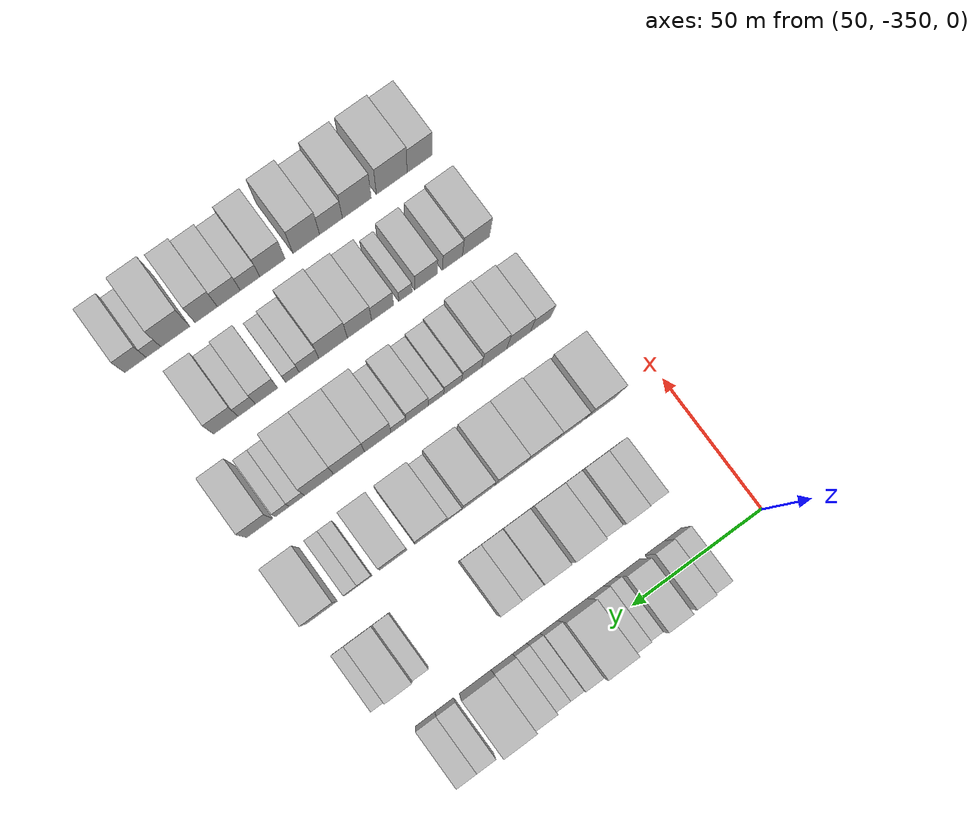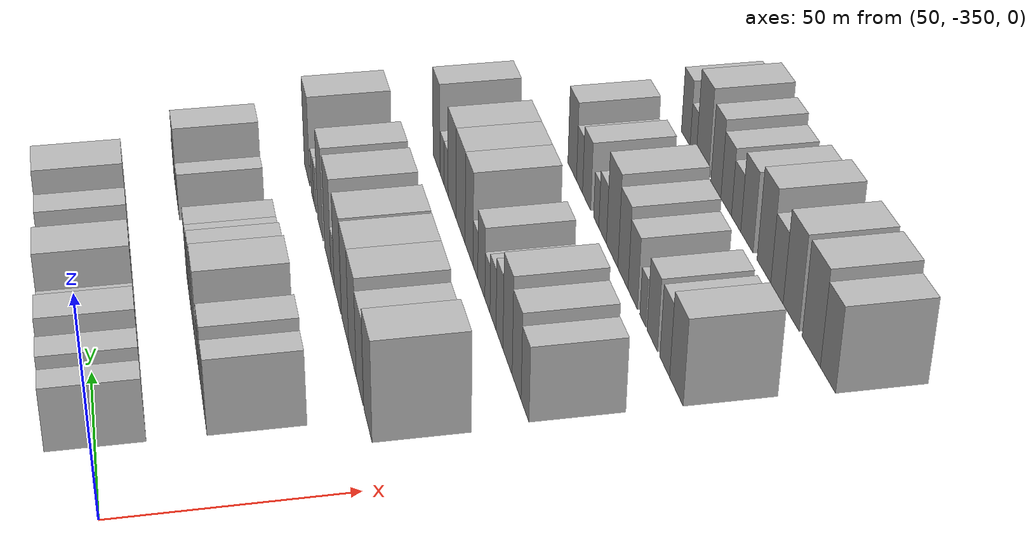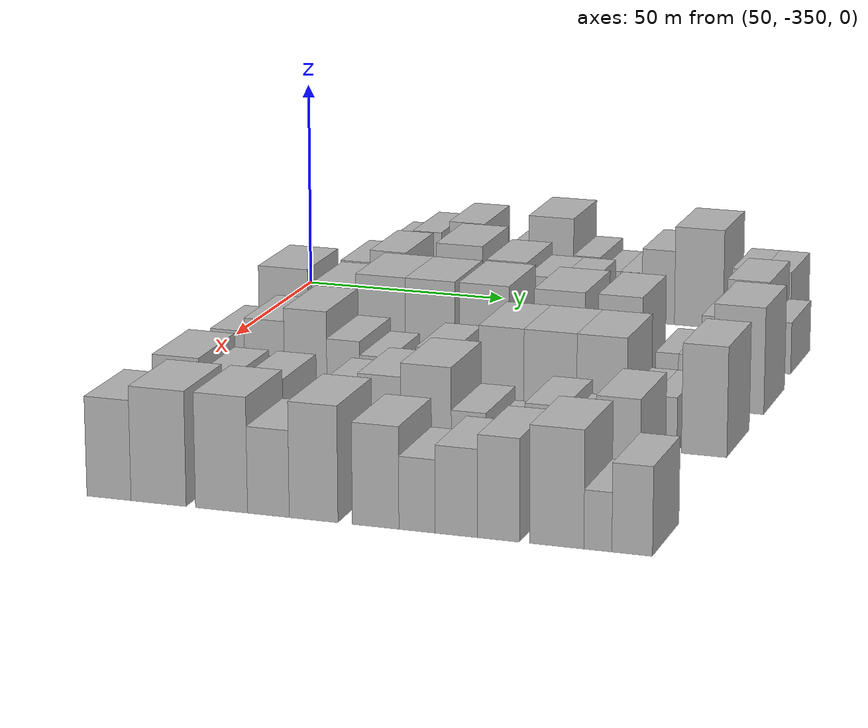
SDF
<sdf version="1.6">
 <world name="default">
  <model name="building_26">
   <static>1</static>
   <pose>50.0000 -323.1114 0 0.000000 0.000000 0.000000</pose>
   <link name="link">
    <pose>0 0 7.50 0 0 0</pose>
    <collision name="collision"><geometry><box><size>20.0000 6.7260 15.0000</size></box></geometry></collision>
    <visual name="visual">
     <cast_shadows>0</cast_shadows>
     <geometry><box><size>20.0000 6.7260 15.0000</size></box></geometry>
     <material>
      <script>
       <uri>model://HANNAS_wall/materials/scripts</uri>
       <uri>model://HANNAS_wall/materials/textures</uri>
       <name>vrc/HANNAS_wall</name>
      </script>
     </material>
    </visual>
   </link>
  </model>
  <model name="building_27">
   <static>1</static>
   <pose>50.0000 -316.0985 0 0.000000 0.000000 0.000000</pose>
   <link name="link">
    <pose>0 0 9.00 0 0 0</pose>
    <collision name="collision"><geometry><box><size>20.0000 7.2999 18.0000</size></box></geometry></collision>
    <visual name="visual">
     <cast_shadows>0</cast_shadows>
     <geometry><box><size>20.0000 7.2999 18.0000</size></box></geometry>
     <material>
      <script>
       <uri>model://HANNAS_wall/materials/scripts</uri>
       <uri>model://HANNAS_wall/materials/textures</uri>
       <name>vrc/HANNAS_wall</name>
      </script>
     </material>
    </visual>
   </link>
  </model>
  <model name="building_28">
   <static>1</static>
   <pose>50.0000 -305.9379 0 0.000000 0.000000 0.000000</pose>
   <link name="link">
    <pose>0 0 10.50 0 0 0</pose>
    <collision name="collision"><geometry><box><size>20.0000 9.0212 21.0000</size></box></geometry></collision>
    <visual name="visual">
     <cast_shadows>0</cast_shadows>
     <geometry><box><size>20.0000 9.0212 21.0000</size></box></geometry>
     <material>
      <script>
       <uri>model://HANNAS_wall/materials/scripts</uri>
       <uri>model://HANNAS_wall/materials/textures</uri>
       <name>vrc/HANNAS_wall</name>
      </script>
     </material>
    </visual>
   </link>
  </model>
  <model name="building_29">
   <static>1</static>
   <pose>50.0000 -299.0022 0 0.000000 0.000000 0.000000</pose>
   <link name="link">
    <pose>0 0 6.00 0 0 0</pose>
    <collision name="collision"><geometry><box><size>20.0000 4.8502 12.0000</size></box></geometry></collision>
    <visual name="visual">
     <cast_shadows>0</cast_shadows>
     <geometry><box><size>20.0000 4.8502 12.0000</size></box></geometry>
     <material>
      <script>
       <uri>model://HANNAS_wall/materials/scripts</uri>
       <uri>model://HANNAS_wall/materials/textures</uri>
       <name>vrc/HANNAS_wall</name>
      </script>
     </material>
    </visual>
   </link>
  </model>
  <model name="building_30">
   <static>1</static>
   <pose>50.0000 -293.4492 0 0.000000 0.000000 0.000000</pose>
   <link name="link">
    <pose>0 0 7.50 0 0 0</pose>
    <collision name="collision"><geometry><box><size>20.0000 6.2558 15.0000</size></box></geometry></collision>
    <visual name="visual">
     <cast_shadows>0</cast_shadows>
     <geometry><box><size>20.0000 6.2558 15.0000</size></box></geometry>
     <material>
      <script>
       <uri>model://HANNAS_wall/materials/scripts</uri>
       <uri>model://HANNAS_wall/materials/textures</uri>
       <name>vrc/HANNAS_wall</name>
      </script>
     </material>
    </visual>
   </link>
  </model>
  <model name="building_31">
   <static>1</static>
   <pose>50.0000 -284.7208 0 0.000000 0.000000 0.000000</pose>
   <link name="link">
    <pose>0 0 12.00 0 0 0</pose>
    <collision name="collision"><geometry><box><size>20.0000 11.2011 24.0000</size></box></geometry></collision>
    <visual name="visual">
     <cast_shadows>0</cast_shadows>
     <geometry><box><size>20.0000 11.2011 24.0000</size></box></geometry>
     <material>
      <script>
       <uri>model://HANNAS_wall/materials/scripts</uri>
       <uri>model://HANNAS_wall/materials/textures</uri>
       <name>vrc/HANNAS_wall</name>
      </script>
     </material>
    </visual>
   </link>
  </model>
  <model name="building_32">
   <static>1</static>
   <pose>50.0000 -275.7651 0 0.000000 0.000000 0.000000</pose>
   <link name="link">
    <pose>0 0 7.50 0 0 0</pose>
    <collision name="collision"><geometry><box><size>20.0000 6.7103 15.0000</size></box></geometry></collision>
    <visual name="visual">
     <cast_shadows>0</cast_shadows>
     <geometry><box><size>20.0000 6.7103 15.0000</size></box></geometry>
     <material>
      <script>
       <uri>model://HANNAS_wall/materials/scripts</uri>
       <uri>model://HANNAS_wall/materials/textures</uri>
       <name>vrc/HANNAS_wall</name>
      </script>
     </material>
    </visual>
   </link>
  </model>
  <model name="building_33">
   <static>1</static>
   <pose>50.0000 -269.9384 0 0.000000 0.000000 0.000000</pose>
   <link name="link">
    <pose>0 0 6.00 0 0 0</pose>
    <collision name="collision"><geometry><box><size>20.0000 4.9430 12.0000</size></box></geometry></collision>
    <visual name="visual">
     <cast_shadows>0</cast_shadows>
     <geometry><box><size>20.0000 4.9430 12.0000</size></box></geometry>
     <material>
      <script>
       <uri>model://HANNAS_wall/materials/scripts</uri>
       <uri>model://HANNAS_wall/materials/textures</uri>
       <name>vrc/HANNAS_wall</name>
      </script>
     </material>
    </visual>
   </link>
  </model>
  <model name="building_34">
   <static>1</static>
   <pose>50.0000 -264.7541 0 0.000000 0.000000 0.000000</pose>
   <link name="link">
    <pose>0 0 6.00 0 0 0</pose>
    <collision name="collision"><geometry><box><size>20.0000 5.4256 12.0000</size></box></geometry></collision>
    <visual name="visual">
     <cast_shadows>0</cast_shadows>
     <geometry><box><size>20.0000 5.4256 12.0000</size></box></geometry>
     <material>
      <script>
       <uri>model://HANNAS_wall/materials/scripts</uri>
       <uri>model://HANNAS_wall/materials/textures</uri>
       <name>vrc/HANNAS_wall</name>
      </script>
     </material>
    </visual>
   </link>
  </model>
  <model name="building_35">
   <static>1</static>
   <pose>50.0000 -258.0373 0 0.000000 0.000000 0.000000</pose>
   <link name="link">
    <pose>0 0 9.00 0 0 0</pose>
    <collision name="collision"><geometry><box><size>20.0000 8.0079 18.0000</size></box></geometry></collision>
    <visual name="visual">
     <cast_shadows>0</cast_shadows>
     <geometry><box><size>20.0000 8.0079 18.0000</size></box></geometry>
     <material>
      <script>
       <uri>model://HANNAS_wall/materials/scripts</uri>
       <uri>model://HANNAS_wall/materials/textures</uri>
       <name>vrc/HANNAS_wall</name>
      </script>
     </material>
    </visual>
   </link>
  </model>
  <model name="building_36">
   <static>1</static>
   <pose>50.0000 -248.0703 0 0.000000 0.000000 0.000000</pose>
   <link name="link">
    <pose>0 0 12.00 0 0 0</pose>
    <collision name="collision"><geometry><box><size>20.0000 11.9261 24.0000</size></box></geometry></collision>
    <visual name="visual">
     <cast_shadows>0</cast_shadows>
     <geometry><box><size>20.0000 11.9261 24.0000</size></box></geometry>
     <material>
      <script>
       <uri>model://HANNAS_wall/materials/scripts</uri>
       <uri>model://HANNAS_wall/materials/textures</uri>
       <name>vrc/HANNAS_wall</name>
      </script>
     </material>
    </visual>
   </link>
  </model>
  <model name="building_37">
   <static>1</static>
   <pose>50.0000 -236.6363 0 0.000000 0.000000 0.000000</pose>
   <link name="link">
    <pose>0 0 7.50 0 0 0</pose>
    <collision name="collision"><geometry><box><size>20.0000 6.9419 15.0000</size></box></geometry></collision>
    <visual name="visual">
     <cast_shadows>0</cast_shadows>
     <geometry><box><size>20.0000 6.9419 15.0000</size></box></geometry>
     <material>
      <script>
       <uri>model://HANNAS_wall/materials/scripts</uri>
       <uri>model://HANNAS_wall/materials/textures</uri>
       <name>vrc/HANNAS_wall</name>
      </script>
     </material>
    </visual>
   </link>
  </model>
  <model name="building_38">
   <static>1</static>
   <pose>50.0000 -229.5078 0 0.000000 0.000000 0.000000</pose>
   <link name="link">
    <pose>0 0 7.50 0 0 0</pose>
    <collision name="collision"><geometry><box><size>20.0000 7.3150 15.0000</size></box></geometry></collision>
    <visual name="visual">
     <cast_shadows>0</cast_shadows>
     <geometry><box><size>20.0000 7.3150 15.0000</size></box></geometry>
     <material>
      <script>
       <uri>model://HANNAS_wall/materials/scripts</uri>
       <uri>model://HANNAS_wall/materials/textures</uri>
       <name>vrc/HANNAS_wall</name>
      </script>
     </material>
    </visual>
   </link>
  </model>
  <model name="building_153">
   <static>1</static>
   <pose>82.0000 -322.9531 0 0.000000 0.000000 0.000000</pose>
   <link name="link">
    <pose>0 0 9.00 0 0 0</pose>
    <collision name="collision"><geometry><box><size>20.0000 7.2082 18.0000</size></box></geometry></collision>
    <visual name="visual">
     <cast_shadows>0</cast_shadows>
     <geometry><box><size>20.0000 7.2082 18.0000</size></box></geometry>
     <material>
      <script>
       <uri>model://HANNAS_wall/materials/scripts</uri>
       <uri>model://HANNAS_wall/materials/textures</uri>
       <name>vrc/HANNAS_wall</name>
      </script>
     </material>
    </visual>
   </link>
  </model>
  <model name="building_154">
   <static>1</static>
   <pose>82.0000 -314.8968 0 0.000000 0.000000 0.000000</pose>
   <link name="link">
    <pose>0 0 10.50 0 0 0</pose>
    <collision name="collision"><geometry><box><size>20.0000 8.9045 21.0000</size></box></geometry></collision>
    <visual name="visual">
     <cast_shadows>0</cast_shadows>
     <geometry><box><size>20.0000 8.9045 21.0000</size></box></geometry>
     <material>
      <script>
       <uri>model://HANNAS_wall/materials/scripts</uri>
       <uri>model://HANNAS_wall/materials/textures</uri>
       <name>vrc/HANNAS_wall</name>
      </script>
     </material>
    </visual>
   </link>
  </model>
  <model name="building_155">
   <static>1</static>
   <pose>82.0000 -306.7368 0 0.000000 0.000000 0.000000</pose>
   <link name="link">
    <pose>0 0 7.50 0 0 0</pose>
    <collision name="collision"><geometry><box><size>20.0000 7.4154 15.0000</size></box></geometry></collision>
    <visual name="visual">
     <cast_shadows>0</cast_shadows>
     <geometry><box><size>20.0000 7.4154 15.0000</size></box></geometry>
     <material>
      <script>
       <uri>model://HANNAS_wall/materials/scripts</uri>
       <uri>model://HANNAS_wall/materials/textures</uri>
       <name>vrc/HANNAS_wall</name>
      </script>
     </material>
    </visual>
   </link>
  </model>
  <model name="building_156">
   <static>1</static>
   <pose>82.0000 -297.3672 0 0.000000 0.000000 0.000000</pose>
   <link name="link">
    <pose>0 0 12.00 0 0 0</pose>
    <collision name="collision"><geometry><box><size>20.0000 11.3239 24.0000</size></box></geometry></collision>
    <visual name="visual">
     <cast_shadows>0</cast_shadows>
     <geometry><box><size>20.0000 11.3239 24.0000</size></box></geometry>
     <material>
      <script>
       <uri>model://HANNAS_wall/materials/scripts</uri>
       <uri>model://HANNAS_wall/materials/textures</uri>
       <name>vrc/HANNAS_wall</name>
      </script>
     </material>
    </visual>
   </link>
  </model>
  <model name="building_157">
   <static>1</static>
   <pose>82.0000 -285.8027 0 0.000000 0.000000 0.000000</pose>
   <link name="link">
    <pose>0 0 10.50 0 0 0</pose>
    <collision name="collision"><geometry><box><size>20.0000 9.8051 21.0000</size></box></geometry></collision>
    <visual name="visual">
     <cast_shadows>0</cast_shadows>
     <geometry><box><size>20.0000 9.8051 21.0000</size></box></geometry>
     <material>
      <script>
       <uri>model://HANNAS_wall/materials/scripts</uri>
       <uri>model://HANNAS_wall/materials/textures</uri>
       <name>vrc/HANNAS_wall</name>
      </script>
     </material>
    </visual>
   </link>
  </model>
  <model name="building_158">
   <static>1</static>
   <pose>82.0000 -276.9880 0 0.000000 0.000000 0.000000</pose>
   <link name="link">
    <pose>0 0 9.00 0 0 0</pose>
    <collision name="collision"><geometry><box><size>20.0000 7.8242 18.0000</size></box></geometry></collision>
    <visual name="visual">
     <cast_shadows>0</cast_shadows>
     <geometry><box><size>20.0000 7.8242 18.0000</size></box></geometry>
     <material>
      <script>
       <uri>model://HANNAS_wall/materials/scripts</uri>
       <uri>model://HANNAS_wall/materials/textures</uri>
       <name>vrc/HANNAS_wall</name>
      </script>
     </material>
    </visual>
   </link>
  </model>
  <model name="building_159">
   <static>1</static>
   <pose>82.0000 -269.1621 0 0.000000 0.000000 0.000000</pose>
   <link name="link">
    <pose>0 0 9.00 0 0 0</pose>
    <collision name="collision"><geometry><box><size>20.0000 7.8276 18.0000</size></box></geometry></collision>
    <visual name="visual">
     <cast_shadows>0</cast_shadows>
     <geometry><box><size>20.0000 7.8276 18.0000</size></box></geometry>
     <material>
      <script>
       <uri>model://HANNAS_wall/materials/scripts</uri>
       <uri>model://HANNAS_wall/materials/textures</uri>
       <name>vrc/HANNAS_wall</name>
      </script>
     </material>
    </visual>
   </link>
  </model>
  <model name="building_160">
   <static>1</static>
   <pose>82.0000 -236.4114 0 0.000000 0.000000 0.000000</pose>
   <link name="link">
    <pose>0 0 6.00 0 0 0</pose>
    <collision name="collision"><geometry><box><size>20.0000 5.8913 12.0000</size></box></geometry></collision>
    <visual name="visual">
     <cast_shadows>0</cast_shadows>
     <geometry><box><size>20.0000 5.8913 12.0000</size></box></geometry>
     <material>
      <script>
       <uri>model://HANNAS_wall/materials/scripts</uri>
       <uri>model://HANNAS_wall/materials/textures</uri>
       <name>vrc/HANNAS_wall</name>
      </script>
     </material>
    </visual>
   </link>
  </model>
  <model name="building_161">
   <static>1</static>
   <pose>82.0000 -228.5733 0 0.000000 0.000000 0.000000</pose>
   <link name="link">
    <pose>0 0 10.50 0 0 0</pose>
    <collision name="collision"><geometry><box><size>20.0000 9.7850 21.0000</size></box></geometry></collision>
    <visual name="visual">
     <cast_shadows>0</cast_shadows>
     <geometry><box><size>20.0000 9.7850 21.0000</size></box></geometry>
     <material>
      <script>
       <uri>model://HANNAS_wall/materials/scripts</uri>
       <uri>model://HANNAS_wall/materials/textures</uri>
       <name>vrc/HANNAS_wall</name>
      </script>
     </material>
    </visual>
   </link>
  </model>
  <model name="building_162">
   <static>1</static>
   <pose>82.0000 -221.0732 0 0.000000 0.000000 0.000000</pose>
   <link name="link">
    <pose>0 0 6.00 0 0 0</pose>
    <collision name="collision"><geometry><box><size>20.0000 5.2152 12.0000</size></box></geometry></collision>
    <visual name="visual">
     <cast_shadows>0</cast_shadows>
     <geometry><box><size>20.0000 5.2152 12.0000</size></box></geometry>
     <material>
      <script>
       <uri>model://HANNAS_wall/materials/scripts</uri>
       <uri>model://HANNAS_wall/materials/textures</uri>
       <name>vrc/HANNAS_wall</name>
      </script>
     </material>
    </visual>
   </link>
  </model>
  <model name="building_266">
   <static>1</static>
   <pose>114.0000 -328.7282 0 0.000000 0.000000 0.000000</pose>
   <link name="link">
    <pose>0 0 12.00 0 0 0</pose>
    <collision name="collision"><geometry><box><size>20.0000 11.8480 24.0000</size></box></geometry></collision>
    <visual name="visual">
     <cast_shadows>0</cast_shadows>
     <geometry><box><size>20.0000 11.8480 24.0000</size></box></geometry>
     <material>
      <script>
       <uri>model://HANNAS_wall/materials/scripts</uri>
       <uri>model://HANNAS_wall/materials/textures</uri>
       <name>vrc/HANNAS_wall</name>
      </script>
     </material>
    </visual>
   </link>
  </model>
  <model name="building_267">
   <static>1</static>
   <pose>114.0000 -316.5685 0 0.000000 0.000000 0.000000</pose>
   <link name="link">
    <pose>0 0 10.50 0 0 0</pose>
    <collision name="collision"><geometry><box><size>20.0000 10.4715 21.0000</size></box></geometry></collision>
    <visual name="visual">
     <cast_shadows>0</cast_shadows>
     <geometry><box><size>20.0000 10.4715 21.0000</size></box></geometry>
     <material>
      <script>
       <uri>model://HANNAS_wall/materials/scripts</uri>
       <uri>model://HANNAS_wall/materials/textures</uri>
       <name>vrc/HANNAS_wall</name>
      </script>
     </material>
    </visual>
   </link>
  </model>
  <model name="building_268">
   <static>1</static>
   <pose>114.0000 -305.4364 0 0.000000 0.000000 0.000000</pose>
   <link name="link">
    <pose>0 0 12.00 0 0 0</pose>
    <collision name="collision"><geometry><box><size>20.0000 11.7926 24.0000</size></box></geometry></collision>
    <visual name="visual">
     <cast_shadows>0</cast_shadows>
     <geometry><box><size>20.0000 11.7926 24.0000</size></box></geometry>
     <material>
      <script>
       <uri>model://HANNAS_wall/materials/scripts</uri>
       <uri>model://HANNAS_wall/materials/textures</uri>
       <name>vrc/HANNAS_wall</name>
      </script>
     </material>
    </visual>
   </link>
  </model>
  <model name="building_269">
   <static>1</static>
   <pose>114.0000 -293.7031 0 0.000000 0.000000 0.000000</pose>
   <link name="link">
    <pose>0 0 12.00 0 0 0</pose>
    <collision name="collision"><geometry><box><size>20.0000 11.6740 24.0000</size></box></geometry></collision>
    <visual name="visual">
     <cast_shadows>0</cast_shadows>
     <geometry><box><size>20.0000 11.6740 24.0000</size></box></geometry>
     <material>
      <script>
       <uri>model://HANNAS_wall/materials/scripts</uri>
       <uri>model://HANNAS_wall/materials/textures</uri>
       <name>vrc/HANNAS_wall</name>
      </script>
     </material>
    </visual>
   </link>
  </model>
  <model name="building_270">
   <static>1</static>
   <pose>114.0000 -281.0234 0 0.000000 0.000000 0.000000</pose>
   <link name="link">
    <pose>0 0 12.00 0 0 0</pose>
    <collision name="collision"><geometry><box><size>20.0000 11.6855 24.0000</size></box></geometry></collision>
    <visual name="visual">
     <cast_shadows>0</cast_shadows>
     <geometry><box><size>20.0000 11.6855 24.0000</size></box></geometry>
     <material>
      <script>
       <uri>model://HANNAS_wall/materials/scripts</uri>
       <uri>model://HANNAS_wall/materials/textures</uri>
       <name>vrc/HANNAS_wall</name>
      </script>
     </material>
    </visual>
   </link>
  </model>
  <model name="building_271">
   <static>1</static>
   <pose>114.0000 -272.3044 0 0.000000 0.000000 0.000000</pose>
   <link name="link">
    <pose>0 0 6.00 0 0 0</pose>
    <collision name="collision"><geometry><box><size>20.0000 5.7524 12.0000</size></box></geometry></collision>
    <visual name="visual">
     <cast_shadows>0</cast_shadows>
     <geometry><box><size>20.0000 5.7524 12.0000</size></box></geometry>
     <material>
      <script>
       <uri>model://HANNAS_wall/materials/scripts</uri>
       <uri>model://HANNAS_wall/materials/textures</uri>
       <name>vrc/HANNAS_wall</name>
      </script>
     </material>
    </visual>
   </link>
  </model>
  <model name="building_272">
   <static>1</static>
   <pose>114.0000 -263.5672 0 0.000000 0.000000 0.000000</pose>
   <link name="link">
    <pose>0 0 12.00 0 0 0</pose>
    <collision name="collision"><geometry><box><size>20.0000 11.7221 24.0000</size></box></geometry></collision>
    <visual name="visual">
     <cast_shadows>0</cast_shadows>
     <geometry><box><size>20.0000 11.7221 24.0000</size></box></geometry>
     <material>
      <script>
       <uri>model://HANNAS_wall/materials/scripts</uri>
       <uri>model://HANNAS_wall/materials/textures</uri>
       <name>vrc/HANNAS_wall</name>
      </script>
     </material>
    </visual>
   </link>
  </model>
  <model name="building_273">
   <static>1</static>
   <pose>114.0000 -249.6778 0 0.000000 0.000000 0.000000</pose>
   <link name="link">
    <pose>0 0 12.00 0 0 0</pose>
    <collision name="collision"><geometry><box><size>20.0000 10.0566 24.0000</size></box></geometry></collision>
    <visual name="visual">
     <cast_shadows>0</cast_shadows>
     <geometry><box><size>20.0000 10.0566 24.0000</size></box></geometry>
     <material>
      <script>
       <uri>model://HANNAS_wall/materials/scripts</uri>
       <uri>model://HANNAS_wall/materials/textures</uri>
       <name>vrc/HANNAS_wall</name>
      </script>
     </material>
    </visual>
   </link>
  </model>
  <model name="building_274">
   <static>1</static>
   <pose>114.0000 -239.0536 0 0.000000 0.000000 0.000000</pose>
   <link name="link">
    <pose>0 0 6.00 0 0 0</pose>
    <collision name="collision"><geometry><box><size>20.0000 5.1920 12.0000</size></box></geometry></collision>
    <visual name="visual">
     <cast_shadows>0</cast_shadows>
     <geometry><box><size>20.0000 5.1920 12.0000</size></box></geometry>
     <material>
      <script>
       <uri>model://HANNAS_wall/materials/scripts</uri>
       <uri>model://HANNAS_wall/materials/textures</uri>
       <name>vrc/HANNAS_wall</name>
      </script>
     </material>
    </visual>
   </link>
  </model>
  <model name="building_275">
   <static>1</static>
   <pose>114.0000 -234.0243 0 0.000000 0.000000 0.000000</pose>
   <link name="link">
    <pose>0 0 6.00 0 0 0</pose>
    <collision name="collision"><geometry><box><size>20.0000 4.8666 12.0000</size></box></geometry></collision>
    <visual name="visual">
     <cast_shadows>0</cast_shadows>
     <geometry><box><size>20.0000 4.8666 12.0000</size></box></geometry>
     <material>
      <script>
       <uri>model://HANNAS_wall/materials/scripts</uri>
       <uri>model://HANNAS_wall/materials/textures</uri>
       <name>vrc/HANNAS_wall</name>
      </script>
     </material>
    </visual>
   </link>
  </model>
  <model name="building_276">
   <static>1</static>
   <pose>114.0000 -222.8743 0 0.000000 0.000000 0.000000</pose>
   <link name="link">
    <pose>0 0 12.00 0 0 0</pose>
    <collision name="collision"><geometry><box><size>20.0000 11.4333 24.0000</size></box></geometry></collision>
    <visual name="visual">
     <cast_shadows>0</cast_shadows>
     <geometry><box><size>20.0000 11.4333 24.0000</size></box></geometry>
     <material>
      <script>
       <uri>model://HANNAS_wall/materials/scripts</uri>
       <uri>model://HANNAS_wall/materials/textures</uri>
       <name>vrc/HANNAS_wall</name>
      </script>
     </material>
    </visual>
   </link>
  </model>
  <model name="building_385">
   <static>1</static>
   <pose>146.0000 -329.3677 0 0.000000 0.000000 0.000000</pose>
   <link name="link">
    <pose>0 0 9.00 0 0 0</pose>
    <collision name="collision"><geometry><box><size>20.0000 7.8290 18.0000</size></box></geometry></collision>
    <visual name="visual">
     <cast_shadows>0</cast_shadows>
     <geometry><box><size>20.0000 7.8290 18.0000</size></box></geometry>
     <material>
      <script>
       <uri>model://HANNAS_wall/materials/scripts</uri>
       <uri>model://HANNAS_wall/materials/textures</uri>
       <name>vrc/HANNAS_wall</name>
      </script>
     </material>
    </visual>
   </link>
  </model>
  <model name="building_386">
   <static>1</static>
   <pose>146.0000 -320.8511 0 0.000000 0.000000 0.000000</pose>
   <link name="link">
    <pose>0 0 10.50 0 0 0</pose>
    <collision name="collision"><geometry><box><size>20.0000 9.2041 21.0000</size></box></geometry></collision>
    <visual name="visual">
     <cast_shadows>0</cast_shadows>
     <geometry><box><size>20.0000 9.2041 21.0000</size></box></geometry>
     <material>
      <script>
       <uri>model://HANNAS_wall/materials/scripts</uri>
       <uri>model://HANNAS_wall/materials/textures</uri>
       <name>vrc/HANNAS_wall</name>
      </script>
     </material>
    </visual>
   </link>
  </model>
  <model name="building_387">
   <static>1</static>
   <pose>146.0000 -311.3401 0 0.000000 0.000000 0.000000</pose>
   <link name="link">
    <pose>0 0 12.00 0 0 0</pose>
    <collision name="collision"><geometry><box><size>20.0000 9.8180 24.0000</size></box></geometry></collision>
    <visual name="visual">
     <cast_shadows>0</cast_shadows>
     <geometry><box><size>20.0000 9.8180 24.0000</size></box></geometry>
     <material>
      <script>
       <uri>model://HANNAS_wall/materials/scripts</uri>
       <uri>model://HANNAS_wall/materials/textures</uri>
       <name>vrc/HANNAS_wall</name>
      </script>
     </material>
    </visual>
   </link>
  </model>
  <model name="building_388">
   <static>1</static>
   <pose>146.0000 -302.6339 0 0.000000 0.000000 0.000000</pose>
   <link name="link">
    <pose>0 0 9.00 0 0 0</pose>
    <collision name="collision"><geometry><box><size>20.0000 7.5943 18.0000</size></box></geometry></collision>
    <visual name="visual">
     <cast_shadows>0</cast_shadows>
     <geometry><box><size>20.0000 7.5943 18.0000</size></box></geometry>
     <material>
      <script>
       <uri>model://HANNAS_wall/materials/scripts</uri>
       <uri>model://HANNAS_wall/materials/textures</uri>
       <name>vrc/HANNAS_wall</name>
      </script>
     </material>
    </visual>
   </link>
  </model>
  <model name="building_389">
   <static>1</static>
   <pose>146.0000 -295.4151 0 0.000000 0.000000 0.000000</pose>
   <link name="link">
    <pose>0 0 7.50 0 0 0</pose>
    <collision name="collision"><geometry><box><size>20.0000 6.8434 15.0000</size></box></geometry></collision>
    <visual name="visual">
     <cast_shadows>0</cast_shadows>
     <geometry><box><size>20.0000 6.8434 15.0000</size></box></geometry>
     <material>
      <script>
       <uri>model://HANNAS_wall/materials/scripts</uri>
       <uri>model://HANNAS_wall/materials/textures</uri>
       <name>vrc/HANNAS_wall</name>
      </script>
     </material>
    </visual>
   </link>
  </model>
  <model name="building_390">
   <static>1</static>
   <pose>146.0000 -289.0289 0 0.000000 0.000000 0.000000</pose>
   <link name="link">
    <pose>0 0 6.00 0 0 0</pose>
    <collision name="collision"><geometry><box><size>20.0000 5.9289 12.0000</size></box></geometry></collision>
    <visual name="visual">
     <cast_shadows>0</cast_shadows>
     <geometry><box><size>20.0000 5.9289 12.0000</size></box></geometry>
     <material>
      <script>
       <uri>model://HANNAS_wall/materials/scripts</uri>
       <uri>model://HANNAS_wall/materials/textures</uri>
       <name>vrc/HANNAS_wall</name>
      </script>
     </material>
    </visual>
   </link>
  </model>
  <model name="building_391">
   <static>1</static>
   <pose>146.0000 -281.8573 0 0.000000 0.000000 0.000000</pose>
   <link name="link">
    <pose>0 0 9.00 0 0 0</pose>
    <collision name="collision"><geometry><box><size>20.0000 8.4144 18.0000</size></box></geometry></collision>
    <visual name="visual">
     <cast_shadows>0</cast_shadows>
     <geometry><box><size>20.0000 8.4144 18.0000</size></box></geometry>
     <material>
      <script>
       <uri>model://HANNAS_wall/materials/scripts</uri>
       <uri>model://HANNAS_wall/materials/textures</uri>
       <name>vrc/HANNAS_wall</name>
      </script>
     </material>
    </visual>
   </link>
  </model>
  <model name="building_392">
   <static>1</static>
   <pose>146.0000 -274.7921 0 0.000000 0.000000 0.000000</pose>
   <link name="link">
    <pose>0 0 6.00 0 0 0</pose>
    <collision name="collision"><geometry><box><size>20.0000 5.7158 12.0000</size></box></geometry></collision>
    <visual name="visual">
     <cast_shadows>0</cast_shadows>
     <geometry><box><size>20.0000 5.7158 12.0000</size></box></geometry>
     <material>
      <script>
       <uri>model://HANNAS_wall/materials/scripts</uri>
       <uri>model://HANNAS_wall/materials/textures</uri>
       <name>vrc/HANNAS_wall</name>
      </script>
     </material>
    </visual>
   </link>
  </model>
  <model name="building_393">
   <static>1</static>
   <pose>146.0000 -266.9217 0 0.000000 0.000000 0.000000</pose>
   <link name="link">
    <pose>0 0 12.00 0 0 0</pose>
    <collision name="collision"><geometry><box><size>20.0000 10.0251 24.0000</size></box></geometry></collision>
    <visual name="visual">
     <cast_shadows>0</cast_shadows>
     <geometry><box><size>20.0000 10.0251 24.0000</size></box></geometry>
     <material>
      <script>
       <uri>model://HANNAS_wall/materials/scripts</uri>
       <uri>model://HANNAS_wall/materials/textures</uri>
       <name>vrc/HANNAS_wall</name>
      </script>
     </material>
    </visual>
   </link>
  </model>
  <model name="building_394">
   <static>1</static>
   <pose>146.0000 -256.0730 0 0.000000 0.000000 0.000000</pose>
   <link name="link">
    <pose>0 0 12.00 0 0 0</pose>
    <collision name="collision"><geometry><box><size>20.0000 11.6722 24.0000</size></box></geometry></collision>
    <visual name="visual">
     <cast_shadows>0</cast_shadows>
     <geometry><box><size>20.0000 11.6722 24.0000</size></box></geometry>
     <material>
      <script>
       <uri>model://HANNAS_wall/materials/scripts</uri>
       <uri>model://HANNAS_wall/materials/textures</uri>
       <name>vrc/HANNAS_wall</name>
      </script>
     </material>
    </visual>
   </link>
  </model>
  <model name="building_395">
   <static>1</static>
   <pose>146.0000 -244.7344 0 0.000000 0.000000 0.000000</pose>
   <link name="link">
    <pose>0 0 12.00 0 0 0</pose>
    <collision name="collision"><geometry><box><size>20.0000 11.0050 24.0000</size></box></geometry></collision>
    <visual name="visual">
     <cast_shadows>0</cast_shadows>
     <geometry><box><size>20.0000 11.0050 24.0000</size></box></geometry>
     <material>
      <script>
       <uri>model://HANNAS_wall/materials/scripts</uri>
       <uri>model://HANNAS_wall/materials/textures</uri>
       <name>vrc/HANNAS_wall</name>
      </script>
     </material>
    </visual>
   </link>
  </model>
  <model name="building_396">
   <static>1</static>
   <pose>146.0000 -236.3846 0 0.000000 0.000000 0.000000</pose>
   <link name="link">
    <pose>0 0 6.00 0 0 0</pose>
    <collision name="collision"><geometry><box><size>20.0000 5.6947 12.0000</size></box></geometry></collision>
    <visual name="visual">
     <cast_shadows>0</cast_shadows>
     <geometry><box><size>20.0000 5.6947 12.0000</size></box></geometry>
     <material>
      <script>
       <uri>model://HANNAS_wall/materials/scripts</uri>
       <uri>model://HANNAS_wall/materials/textures</uri>
       <name>vrc/HANNAS_wall</name>
      </script>
     </material>
    </visual>
   </link>
  </model>
  <model name="building_397">
   <static>1</static>
   <pose>146.0000 -230.9214 0 0.000000 0.000000 0.000000</pose>
   <link name="link">
    <pose>0 0 6.00 0 0 0</pose>
    <collision name="collision"><geometry><box><size>20.0000 5.2317 12.0000</size></box></geometry></collision>
    <visual name="visual">
     <cast_shadows>0</cast_shadows>
     <geometry><box><size>20.0000 5.2317 12.0000</size></box></geometry>
     <material>
      <script>
       <uri>model://HANNAS_wall/materials/scripts</uri>
       <uri>model://HANNAS_wall/materials/textures</uri>
       <name>vrc/HANNAS_wall</name>
      </script>
     </material>
    </visual>
   </link>
  </model>
  <model name="building_398">
   <static>1</static>
   <pose>146.0000 -222.4149 0 0.000000 0.000000 0.000000</pose>
   <link name="link">
    <pose>0 0 12.00 0 0 0</pose>
    <collision name="collision"><geometry><box><size>20.0000 9.7812 24.0000</size></box></geometry></collision>
    <visual name="visual">
     <cast_shadows>0</cast_shadows>
     <geometry><box><size>20.0000 9.7812 24.0000</size></box></geometry>
     <material>
      <script>
       <uri>model://HANNAS_wall/materials/scripts</uri>
       <uri>model://HANNAS_wall/materials/textures</uri>
       <name>vrc/HANNAS_wall</name>
      </script>
     </material>
    </visual>
   </link>
  </model>
  <model name="building_505">
   <static>1</static>
   <pose>178.0000 -328.0633 0 0.000000 0.000000 0.000000</pose>
   <link name="link">
    <pose>0 0 10.50 0 0 0</pose>
    <collision name="collision"><geometry><box><size>20.0000 10.4807 21.0000</size></box></geometry></collision>
    <visual name="visual">
     <cast_shadows>0</cast_shadows>
     <geometry><box><size>20.0000 10.4807 21.0000</size></box></geometry>
     <material>
      <script>
       <uri>model://HANNAS_wall/materials/scripts</uri>
       <uri>model://HANNAS_wall/materials/textures</uri>
       <name>vrc/HANNAS_wall</name>
      </script>
     </material>
    </visual>
   </link>
  </model>
  <model name="building_506">
   <static>1</static>
   <pose>178.0000 -318.9171 0 0.000000 0.000000 0.000000</pose>
   <link name="link">
    <pose>0 0 9.00 0 0 0</pose>
    <collision name="collision"><geometry><box><size>20.0000 7.8118 18.0000</size></box></geometry></collision>
    <visual name="visual">
     <cast_shadows>0</cast_shadows>
     <geometry><box><size>20.0000 7.8118 18.0000</size></box></geometry>
     <material>
      <script>
       <uri>model://HANNAS_wall/materials/scripts</uri>
       <uri>model://HANNAS_wall/materials/textures</uri>
       <name>vrc/HANNAS_wall</name>
      </script>
     </material>
    </visual>
   </link>
  </model>
  <model name="building_507">
   <static>1</static>
   <pose>178.0000 -308.6677 0 0.000000 0.000000 0.000000</pose>
   <link name="link">
    <pose>0 0 9.00 0 0 0</pose>
    <collision name="collision"><geometry><box><size>20.0000 8.6869 18.0000</size></box></geometry></collision>
    <visual name="visual">
     <cast_shadows>0</cast_shadows>
     <geometry><box><size>20.0000 8.6869 18.0000</size></box></geometry>
     <material>
      <script>
       <uri>model://HANNAS_wall/materials/scripts</uri>
       <uri>model://HANNAS_wall/materials/textures</uri>
       <name>vrc/HANNAS_wall</name>
      </script>
     </material>
    </visual>
   </link>
  </model>
  <model name="building_508">
   <static>1</static>
   <pose>178.0000 -300.7523 0 0.000000 0.000000 0.000000</pose>
   <link name="link">
    <pose>0 0 6.00 0 0 0</pose>
    <collision name="collision"><geometry><box><size>20.0000 5.1440 12.0000</size></box></geometry></collision>
    <visual name="visual">
     <cast_shadows>0</cast_shadows>
     <geometry><box><size>20.0000 5.1440 12.0000</size></box></geometry>
     <material>
      <script>
       <uri>model://HANNAS_wall/materials/scripts</uri>
       <uri>model://HANNAS_wall/materials/textures</uri>
       <name>vrc/HANNAS_wall</name>
      </script>
     </material>
    </visual>
   </link>
  </model>
  <model name="building_509">
   <static>1</static>
   <pose>178.0000 -291.9688 0 0.000000 0.000000 0.000000</pose>
   <link name="link">
    <pose>0 0 9.00 0 0 0</pose>
    <collision name="collision"><geometry><box><size>20.0000 8.4229 18.0000</size></box></geometry></collision>
    <visual name="visual">
     <cast_shadows>0</cast_shadows>
     <geometry><box><size>20.0000 8.4229 18.0000</size></box></geometry>
     <material>
      <script>
       <uri>model://HANNAS_wall/materials/scripts</uri>
       <uri>model://HANNAS_wall/materials/textures</uri>
       <name>vrc/HANNAS_wall</name>
      </script>
     </material>
    </visual>
   </link>
  </model>
  <model name="building_510">
   <static>1</static>
   <pose>178.0000 -283.1018 0 0.000000 0.000000 0.000000</pose>
   <link name="link">
    <pose>0 0 10.50 0 0 0</pose>
    <collision name="collision"><geometry><box><size>20.0000 9.3111 21.0000</size></box></geometry></collision>
    <visual name="visual">
     <cast_shadows>0</cast_shadows>
     <geometry><box><size>20.0000 9.3111 21.0000</size></box></geometry>
     <material>
      <script>
       <uri>model://HANNAS_wall/materials/scripts</uri>
       <uri>model://HANNAS_wall/materials/textures</uri>
       <name>vrc/HANNAS_wall</name>
      </script>
     </material>
    </visual>
   </link>
  </model>
  <model name="building_511">
   <static>1</static>
   <pose>178.0000 -272.9835 0 0.000000 0.000000 0.000000</pose>
   <link name="link">
    <pose>0 0 12.00 0 0 0</pose>
    <collision name="collision"><geometry><box><size>20.0000 10.9255 24.0000</size></box></geometry></collision>
    <visual name="visual">
     <cast_shadows>0</cast_shadows>
     <geometry><box><size>20.0000 10.9255 24.0000</size></box></geometry>
     <material>
      <script>
       <uri>model://HANNAS_wall/materials/scripts</uri>
       <uri>model://HANNAS_wall/materials/textures</uri>
       <name>vrc/HANNAS_wall</name>
      </script>
     </material>
    </visual>
   </link>
  </model>
  <model name="building_512">
   <static>1</static>
   <pose>178.0000 -263.7891 0 0.000000 0.000000 0.000000</pose>
   <link name="link">
    <pose>0 0 7.50 0 0 0</pose>
    <collision name="collision"><geometry><box><size>20.0000 7.4634 15.0000</size></box></geometry></collision>
    <visual name="visual">
     <cast_shadows>0</cast_shadows>
     <geometry><box><size>20.0000 7.4634 15.0000</size></box></geometry>
     <material>
      <script>
       <uri>model://HANNAS_wall/materials/scripts</uri>
       <uri>model://HANNAS_wall/materials/textures</uri>
       <name>vrc/HANNAS_wall</name>
      </script>
     </material>
    </visual>
   </link>
  </model>
  <model name="building_513">
   <static>1</static>
   <pose>178.0000 -257.4545 0 0.000000 0.000000 0.000000</pose>
   <link name="link">
    <pose>0 0 6.00 0 0 0</pose>
    <collision name="collision"><geometry><box><size>20.0000 5.2057 12.0000</size></box></geometry></collision>
    <visual name="visual">
     <cast_shadows>0</cast_shadows>
     <geometry><box><size>20.0000 5.2057 12.0000</size></box></geometry>
     <material>
      <script>
       <uri>model://HANNAS_wall/materials/scripts</uri>
       <uri>model://HANNAS_wall/materials/textures</uri>
       <name>vrc/HANNAS_wall</name>
      </script>
     </material>
    </visual>
   </link>
  </model>
  <model name="building_514">
   <static>1</static>
   <pose>178.0000 -247.6195 0 0.000000 0.000000 0.000000</pose>
   <link name="link">
    <pose>0 0 9.00 0 0 0</pose>
    <collision name="collision"><geometry><box><size>20.0000 8.4643 18.0000</size></box></geometry></collision>
    <visual name="visual">
     <cast_shadows>0</cast_shadows>
     <geometry><box><size>20.0000 8.4643 18.0000</size></box></geometry>
     <material>
      <script>
       <uri>model://HANNAS_wall/materials/scripts</uri>
       <uri>model://HANNAS_wall/materials/textures</uri>
       <name>vrc/HANNAS_wall</name>
      </script>
     </material>
    </visual>
   </link>
  </model>
  <model name="building_515">
   <static>1</static>
   <pose>178.0000 -240.1341 0 0.000000 0.000000 0.000000</pose>
   <link name="link">
    <pose>0 0 7.50 0 0 0</pose>
    <collision name="collision"><geometry><box><size>20.0000 6.5065 15.0000</size></box></geometry></collision>
    <visual name="visual">
     <cast_shadows>0</cast_shadows>
     <geometry><box><size>20.0000 6.5065 15.0000</size></box></geometry>
     <material>
      <script>
       <uri>model://HANNAS_wall/materials/scripts</uri>
       <uri>model://HANNAS_wall/materials/textures</uri>
       <name>vrc/HANNAS_wall</name>
      </script>
     </material>
    </visual>
   </link>
  </model>
  <model name="building_516">
   <static>1</static>
   <pose>178.0000 -232.2341 0 0.000000 0.000000 0.000000</pose>
   <link name="link">
    <pose>0 0 10.50 0 0 0</pose>
    <collision name="collision"><geometry><box><size>20.0000 9.2937 21.0000</size></box></geometry></collision>
    <visual name="visual">
     <cast_shadows>0</cast_shadows>
     <geometry><box><size>20.0000 9.2937 21.0000</size></box></geometry>
     <material>
      <script>
       <uri>model://HANNAS_wall/materials/scripts</uri>
       <uri>model://HANNAS_wall/materials/textures</uri>
       <name>vrc/HANNAS_wall</name>
      </script>
     </material>
    </visual>
   </link>
  </model>
  <model name="building_629">
   <static>1</static>
   <pose>210.0000 -329.5025 0 0.000000 0.000000 0.000000</pose>
   <link name="link">
    <pose>0 0 10.50 0 0 0</pose>
    <collision name="collision"><geometry><box><size>20.0000 9.6529 21.0000</size></box></geometry></collision>
    <visual name="visual">
     <cast_shadows>0</cast_shadows>
     <geometry><box><size>20.0000 9.6529 21.0000</size></box></geometry>
     <material>
      <script>
       <uri>model://HANNAS_wall/materials/scripts</uri>
       <uri>model://HANNAS_wall/materials/textures</uri>
       <name>vrc/HANNAS_wall</name>
      </script>
     </material>
    </visual>
   </link>
  </model>
  <model name="building_630">
   <static>1</static>
   <pose>210.0000 -318.6954 0 0.000000 0.000000 0.000000</pose>
   <link name="link">
    <pose>0 0 12.00 0 0 0</pose>
    <collision name="collision"><geometry><box><size>20.0000 11.9614 24.0000</size></box></geometry></collision>
    <visual name="visual">
     <cast_shadows>0</cast_shadows>
     <geometry><box><size>20.0000 11.9614 24.0000</size></box></geometry>
     <material>
      <script>
       <uri>model://HANNAS_wall/materials/scripts</uri>
       <uri>model://HANNAS_wall/materials/textures</uri>
       <name>vrc/HANNAS_wall</name>
      </script>
     </material>
    </visual>
   </link>
  </model>
  <model name="building_631">
   <static>1</static>
   <pose>210.0000 -305.1357 0 0.000000 0.000000 0.000000</pose>
   <link name="link">
    <pose>0 0 12.00 0 0 0</pose>
    <collision name="collision"><geometry><box><size>20.0000 11.1579 24.0000</size></box></geometry></collision>
    <visual name="visual">
     <cast_shadows>0</cast_shadows>
     <geometry><box><size>20.0000 11.1579 24.0000</size></box></geometry>
     <material>
      <script>
       <uri>model://HANNAS_wall/materials/scripts</uri>
       <uri>model://HANNAS_wall/materials/textures</uri>
       <name>vrc/HANNAS_wall</name>
      </script>
     </material>
    </visual>
   </link>
  </model>
  <model name="building_632">
   <static>1</static>
   <pose>210.0000 -295.1288 0 0.000000 0.000000 0.000000</pose>
   <link name="link">
    <pose>0 0 9.00 0 0 0</pose>
    <collision name="collision"><geometry><box><size>20.0000 8.8560 18.0000</size></box></geometry></collision>
    <visual name="visual">
     <cast_shadows>0</cast_shadows>
     <geometry><box><size>20.0000 8.8560 18.0000</size></box></geometry>
     <material>
      <script>
       <uri>model://HANNAS_wall/materials/scripts</uri>
       <uri>model://HANNAS_wall/materials/textures</uri>
       <name>vrc/HANNAS_wall</name>
      </script>
     </material>
    </visual>
   </link>
  </model>
  <model name="building_633">
   <static>1</static>
   <pose>210.0000 -285.5650 0 0.000000 0.000000 0.000000</pose>
   <link name="link">
    <pose>0 0 12.00 0 0 0</pose>
    <collision name="collision"><geometry><box><size>20.0000 10.2715 24.0000</size></box></geometry></collision>
    <visual name="visual">
     <cast_shadows>0</cast_shadows>
     <geometry><box><size>20.0000 10.2715 24.0000</size></box></geometry>
     <material>
      <script>
       <uri>model://HANNAS_wall/materials/scripts</uri>
       <uri>model://HANNAS_wall/materials/textures</uri>
       <name>vrc/HANNAS_wall</name>
      </script>
     </material>
    </visual>
   </link>
  </model>
  <model name="building_634">
   <static>1</static>
   <pose>210.0000 -272.5747 0 0.000000 0.000000 0.000000</pose>
   <link name="link">
    <pose>0 0 10.50 0 0 0</pose>
    <collision name="collision"><geometry><box><size>20.0000 9.7091 21.0000</size></box></geometry></collision>
    <visual name="visual">
     <cast_shadows>0</cast_shadows>
     <geometry><box><size>20.0000 9.7091 21.0000</size></box></geometry>
     <material>
      <script>
       <uri>model://HANNAS_wall/materials/scripts</uri>
       <uri>model://HANNAS_wall/materials/textures</uri>
       <name>vrc/HANNAS_wall</name>
      </script>
     </material>
    </visual>
   </link>
  </model>
  <model name="building_635">
   <static>1</static>
   <pose>210.0000 -263.9896 0 0.000000 0.000000 0.000000</pose>
   <link name="link">
    <pose>0 0 7.50 0 0 0</pose>
    <collision name="collision"><geometry><box><size>20.0000 7.4613 15.0000</size></box></geometry></collision>
    <visual name="visual">
     <cast_shadows>0</cast_shadows>
     <geometry><box><size>20.0000 7.4613 15.0000</size></box></geometry>
     <material>
      <script>
       <uri>model://HANNAS_wall/materials/scripts</uri>
       <uri>model://HANNAS_wall/materials/textures</uri>
       <name>vrc/HANNAS_wall</name>
      </script>
     </material>
    </visual>
   </link>
  </model>
  <model name="building_636">
   <static>1</static>
   <pose>210.0000 -255.8869 0 0.000000 0.000000 0.000000</pose>
   <link name="link">
    <pose>0 0 9.00 0 0 0</pose>
    <collision name="collision"><geometry><box><size>20.0000 8.7441 18.0000</size></box></geometry></collision>
    <visual name="visual">
     <cast_shadows>0</cast_shadows>
     <geometry><box><size>20.0000 8.7441 18.0000</size></box></geometry>
     <material>
      <script>
       <uri>model://HANNAS_wall/materials/scripts</uri>
       <uri>model://HANNAS_wall/materials/textures</uri>
       <name>vrc/HANNAS_wall</name>
      </script>
     </material>
    </visual>
   </link>
  </model>
  <model name="building_637">
   <static>1</static>
   <pose>210.0000 -247.2480 0 0.000000 0.000000 0.000000</pose>
   <link name="link">
    <pose>0 0 10.50 0 0 0</pose>
    <collision name="collision"><geometry><box><size>20.0000 8.5337 21.0000</size></box></geometry></collision>
    <visual name="visual">
     <cast_shadows>0</cast_shadows>
     <geometry><box><size>20.0000 8.5337 21.0000</size></box></geometry>
     <material>
      <script>
       <uri>model://HANNAS_wall/materials/scripts</uri>
       <uri>model://HANNAS_wall/materials/textures</uri>
       <name>vrc/HANNAS_wall</name>
      </script>
     </material>
    </visual>
   </link>
  </model>
  <model name="building_638">
   <static>1</static>
   <pose>210.0000 -235.4961 0 0.000000 0.000000 0.000000</pose>
   <link name="link">
    <pose>0 0 12.00 0 0 0</pose>
    <collision name="collision"><geometry><box><size>20.0000 10.9702 24.0000</size></box></geometry></collision>
    <visual name="visual">
     <cast_shadows>0</cast_shadows>
     <geometry><box><size>20.0000 10.9702 24.0000</size></box></geometry>
     <material>
      <script>
       <uri>model://HANNAS_wall/materials/scripts</uri>
       <uri>model://HANNAS_wall/materials/textures</uri>
       <name>vrc/HANNAS_wall</name>
      </script>
     </material>
    </visual>
   </link>
  </model>
  <model name="building_639">
   <static>1</static>
   <pose>210.0000 -227.2187 0 0.000000 0.000000 0.000000</pose>
   <link name="link">
    <pose>0 0 6.00 0 0 0</pose>
    <collision name="collision"><geometry><box><size>20.0000 5.5846 12.0000</size></box></geometry></collision>
    <visual name="visual">
     <cast_shadows>0</cast_shadows>
     <geometry><box><size>20.0000 5.5846 12.0000</size></box></geometry>
     <material>
      <script>
       <uri>model://HANNAS_wall/materials/scripts</uri>
       <uri>model://HANNAS_wall/materials/textures</uri>
       <name>vrc/HANNAS_wall</name>
      </script>
     </material>
    </visual>
   </link>
  </model>
  <model name="building_640">
   <static>1</static>
   <pose>210.0000 -220.3891 0 0.000000 0.000000 0.000000</pose>
   <link name="link">
    <pose>0 0 9.00 0 0 0</pose>
    <collision name="collision"><geometry><box><size>20.0000 8.0745 18.0000</size></box></geometry></collision>
    <visual name="visual">
     <cast_shadows>0</cast_shadows>
     <geometry><box><size>20.0000 8.0745 18.0000</size></box></geometry>
     <material>
      <script>
       <uri>model://HANNAS_wall/materials/scripts</uri>
       <uri>model://HANNAS_wall/materials/textures</uri>
       <name>vrc/HANNAS_wall</name>
      </script>
     </material>
    </visual>
   </link>
  </model>
 </world>
</sdf>
